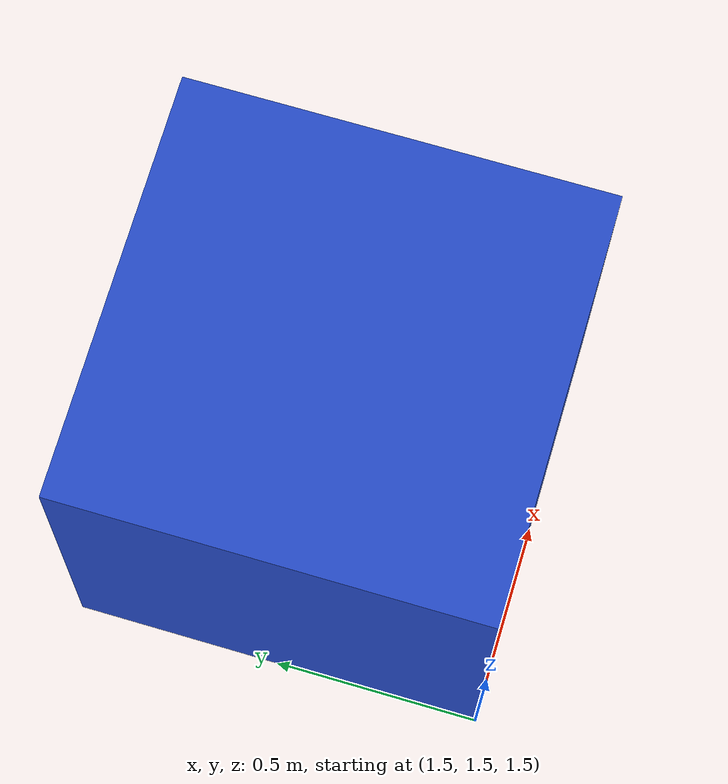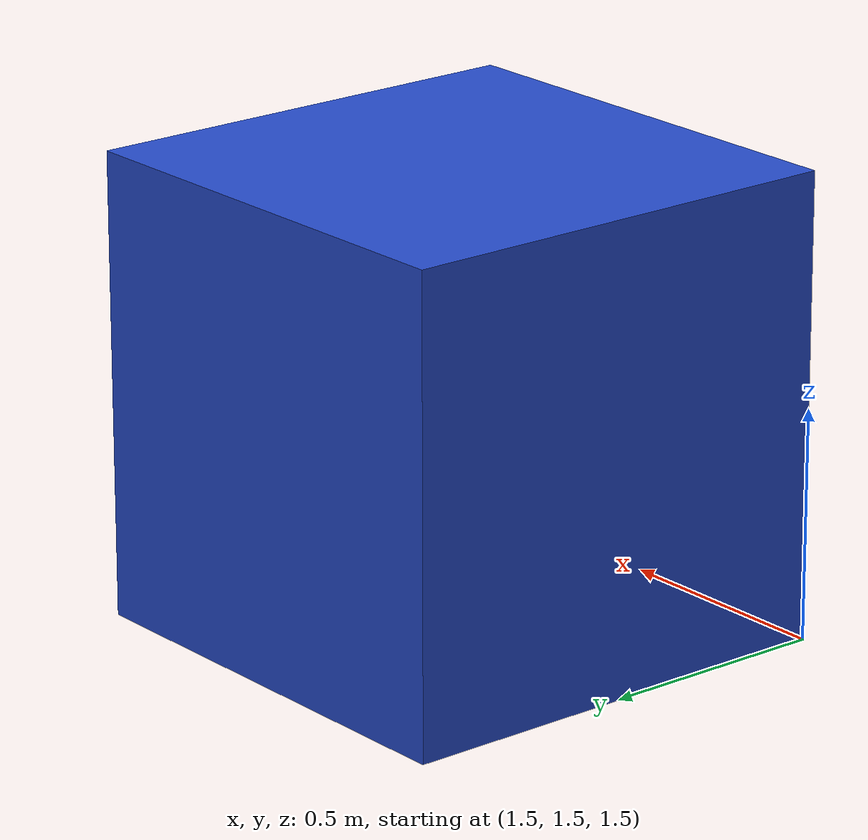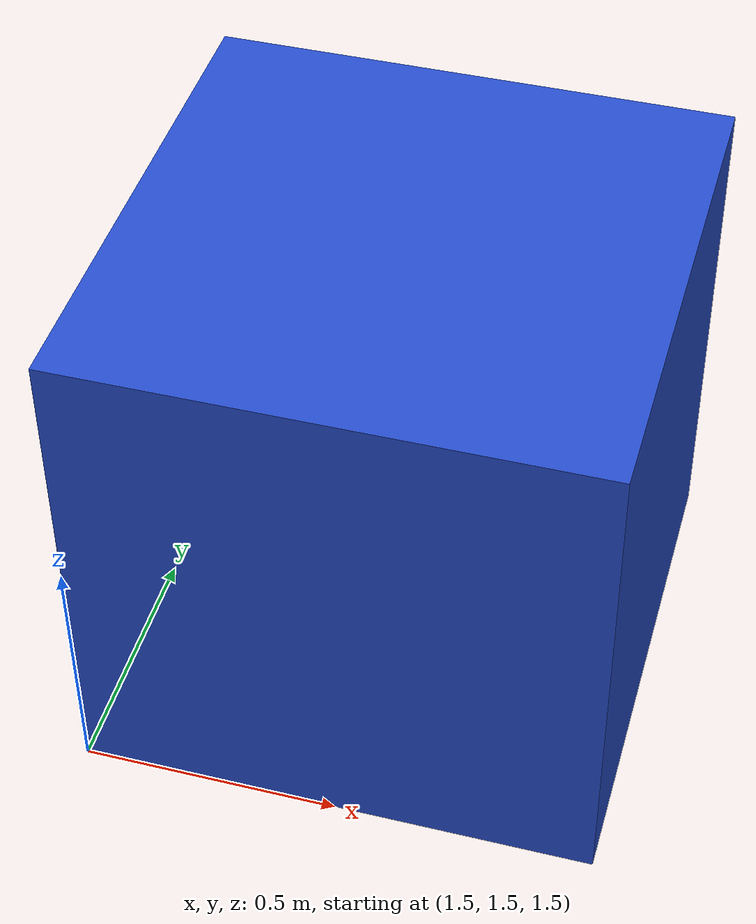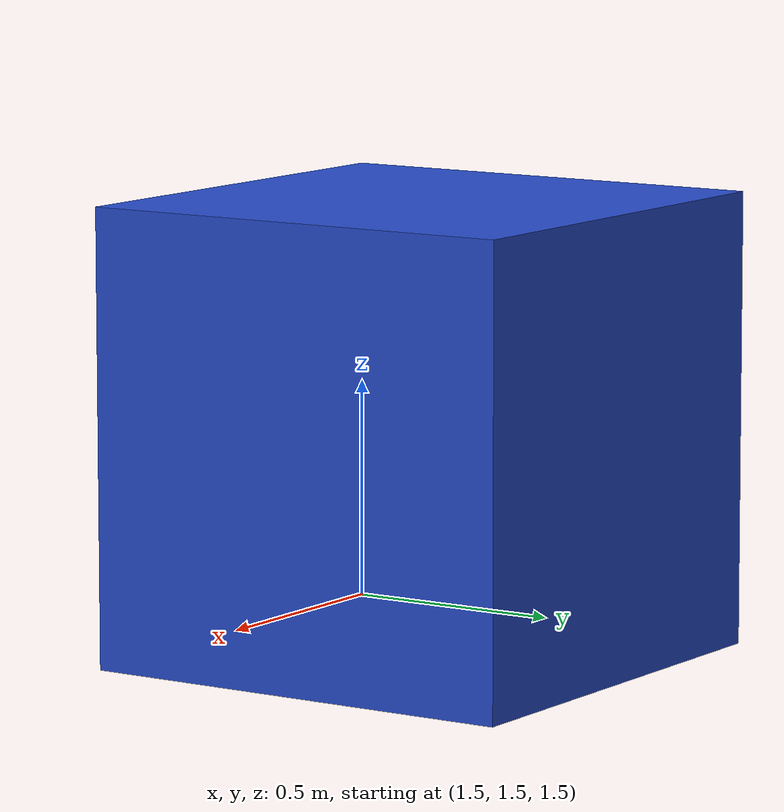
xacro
<robot name="demo_bot">
  <link name="cube">
    <inertial>
      <origin xyz="2 2 2" />
      <mass value="1.0" />
      <inertia  ixx="1.0" ixy="0.0"  ixz="0.0"  iyy="100.0"  iyz="0.0"  izz="1.0" />
    </inertial>
    <visual>
      <origin xyz="2 2 2"/>
      <geometry>
        <box size="1 1 1" />
      </geometry>
    </visual>
    <collision>
      <origin xyz="2 2 2"/>
      <geometry>
        <box size="1 1 1" />
      </geometry>
    </collision>
  </link>
  <gazebo reference="cube">
    <material>Gazebo/Blue</material>
  </gazebo>
</robot>
